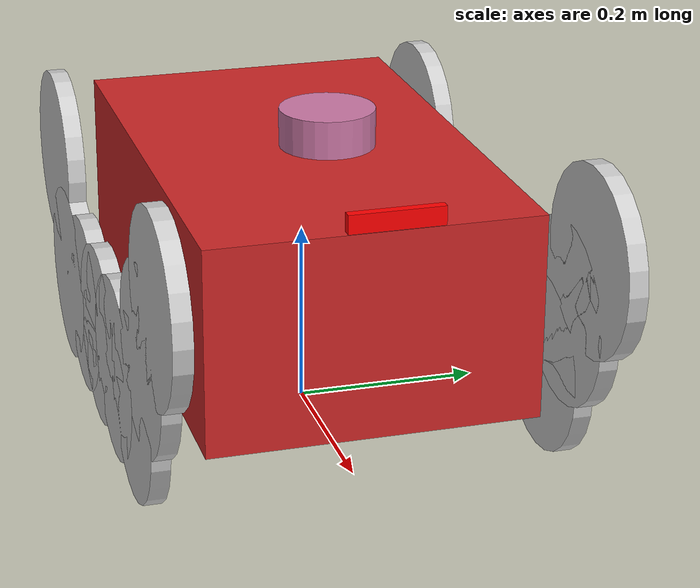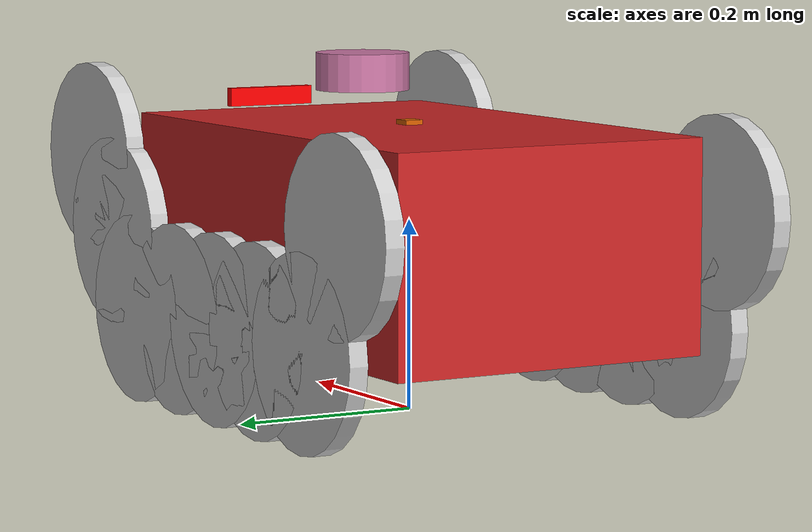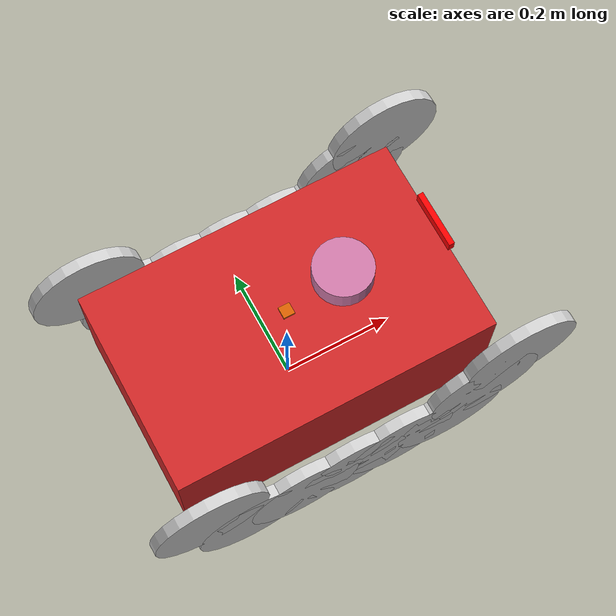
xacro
<?xml version="1.0" ?>
<robot name="bunker1" xmlns:xacro="http://ros.org/wiki/xacro">
    <xacro:arg name="namespace" default=""/>
    <xacro:include filename="inertial.xacro"/>
    <xacro:include filename="material.xacro"/>
    <xacro:include filename="macro-roue.xacro"/>
    <xacro:include filename="macro-imu.xacro"/>
    <xacro:include filename="macro-gps2.xacro"/>
    <xacro:include filename="macro-d435.xacro"/>

    <xacro:property name="base_width" value="0.350"/>
    <xacro:property name="base_length" value="0.560"/>
    <xacro:property name="base_height" value="0.22"/>
    <xacro:property name="sol_height" value="0.08"/>

    <xacro:property name="wheel_radius" value="0.10"/>
    <xacro:property name="wheel_width" value="0.02"/>
    <xacro:property name="wheel_ygap" value="${base_width*0.6+wheel_width/2.0}"/>
<!-- position des roues -->
    <xacro:property name="x1" value="${wheel_radius*0.9}"/>
    <xacro:property name="x2" value="${wheel_radius*1.85}"/>
    <xacro:property name="x3" value="0.254"/>
    <xacro:property name="x4" value="0.300"/>
    <xacro:property name="x5" value="0.242"/>

    <link name="$(arg namespace)/base_link">
        <origin xyz="0 0 0.5" rpy="0 0 0"/>
    </link>
    <link name="$(arg namespace)/base_footprint">
    </link>
    <joint name="$(arg namespace)/base_footprint_joint" type="fixed">
        <parent link="$(arg namespace)/base_link"/>
        <child link="$(arg namespace)/base_footprint" />
        <origin xyz="0 0 0" rpy="0 0 0"/>
    </joint>

    <joint name="$(arg namespace)/corps_joint" type="fixed">
        <parent link="$(arg namespace)/base_link"/>
        <child link="$(arg namespace)/corps_link" />
        <origin xyz="0 0 ${base_height/2+sol_height}" rpy="0 0 0"/>
    </joint>

    <link name="$(arg namespace)/corps_link">
        <visual>
            <origin xyz="0 0 0" rpy="0 0 0"/>
            <geometry>
                <box size="${base_length} ${base_width}  ${base_height}"/>
            </geometry>

        </visual>

        <collision>
            <geometry>
                <box size="${base_length} ${base_width}  ${base_height}"/>
            </geometry>
        </collision>

        <xacro:box_inertia m="50.0" d="${base_width}" w="${base_length}" h="${base_height}"/>
    </link>

<!-- LEFT TRACK  -->
    <link name='$(arg namespace)/left_track'>
        <origin xyz="0 0.2 0" rpy="0 0 0"/>
        <xacro:box_inertia m="1.0" w="${base_width}" d="${base_length}" h="${base_height}"/>
    </link>

    <joint name='$(arg namespace)/left_track_j' type='revolute'>
        <child link="$(arg namespace)/left_track"/>
        <parent link="$(arg namespace)/base_link"/>
        <axis xyz="0 1 0"/>
        <limit lower="0" upper="0" effort="0" velocity="4"/>
    </joint>
<!-- RIGHT TRACK  -->
    <link name='$(arg namespace)/right_track'>
        <origin xyz="0 -0.2 0" rpy="0 0 0"/>
            <xacro:box_inertia m="1.0" w="${base_width}" d="${base_length}" h="${base_height}"/>
    </link>
    <joint name='$(arg namespace)/right_track_j' type='revolute'>
        <child link="$(arg namespace)/right_track"/>
        <parent link="$(arg namespace)/base_link"/>
        <axis xyz="0 1 0"/>
        <limit lower="0" upper="0" effort="0" velocity="4"/>
        <use_parent_model_frame>1</use_parent_model_frame>
    </joint>

<!-- LEFT WHEELs -->
<xacro:roue suffix="left" num="0" xx="0" zz="0" sign=""/>
<xacro:roue suffix="left" num="1" xx="${x1}" zz="0" sign=""/>
<xacro:roue suffix="left" num="2" xx="${-x1}" zz="0" sign=""/>
<xacro:roue suffix="left" num="3" xx="${x2}" zz="0" sign=""/>
<xacro:roue suffix="left" num="4" xx="${-x2}" zz="0" sign=""/>
<xacro:roue suffix="left" num="5" xx="${-x3}" zz="0.120" sign=""/>
<xacro:roue suffix="left" num="6" xx="${x4}" zz="0.155" sign=""/>
<xacro:roue suffix="left" num="7" xx="${x5}" zz="0.078" sign=""/>

<!-- RIGHT WHEELs -->
<xacro:roue suffix="right" num="0" xx="0" zz="0" sign="-"/>
<xacro:roue suffix="right" num="1" xx="${x1}" zz="0" sign="-"/>
<xacro:roue suffix="right" num="2" xx="${-x1}" zz="0" sign="-"/>
<xacro:roue suffix="right" num="3" xx="${x2}" zz="0" sign="-"/>
<xacro:roue suffix="right" num="4" xx="${-x2}" zz="0" sign="-"/>
<xacro:roue suffix="right" num="5" xx="${-x3}" zz="0.120" sign="-"/>
<xacro:roue suffix="right" num="6" xx="${x4}" zz="0.155" sign="-"/>
<xacro:roue suffix="right" num="7" xx="${x5}" zz="0.078" sign="-"/>

<!-- IMU -->
<xacro:myimu xyz="0 0 ${sol_height+base_height}" rpy="0 0 0"/>

<!-- GPS -->
<xacro:mygps xyz="0.1 0 ${sol_height+base_height+0.05}" rpy="0 0 0"/>

<!-- GPS -->
<xacro:myd435 xyz="${base_length/2} 0.0175 ${base_height+sol_height+0.0125}" rpy="0 0 0"/>

<!-- pour republier les angles de roues -->
<gazebo>

    <plugin name="wheel_drive_controller" filename="libgazebo_ros_diff_drive.so">

    <!-- wheels -->
    <num_wheel_pairs>8</num_wheel_pairs>
                <left_joint>$(arg namespace)/left_wheel_joint_0</left_joint>
                <right_joint>$(arg namespace)/right_wheel_joint_0</right_joint>
                <left_joint>$(arg namespace)/left_wheel_joint_1</left_joint>
                <right_joint>$(arg namespace)/right_wheel_joint_1</right_joint>
                <left_joint>$(arg namespace)/left_wheel_joint_2</left_joint>
                <right_joint>$(arg namespace)/right_wheel_joint_2</right_joint>
                <left_joint>$(arg namespace)/left_wheel_joint_3</left_joint>
                <right_joint>$(arg namespace)/right_wheel_joint_3</right_joint>
                <left_joint>$(arg namespace)/left_wheel_joint_4</left_joint>
                <right_joint>$(arg namespace)/right_wheel_joint_4</right_joint>
                <left_joint>$(arg namespace)/left_wheel_joint_5</left_joint>
                <right_joint>$(arg namespace)/right_wheel_joint_5</right_joint>
                <left_joint>$(arg namespace)/left_wheel_joint_6</left_joint>
                <right_joint>$(arg namespace)/right_wheel_joint_6</right_joint>
                <left_joint>$(arg namespace)/left_wheel_joint_7</left_joint>
                <right_joint>$(arg namespace)/right_wheel_joint_7</right_joint>

    <!-- kinematics -->
    <wheel_separation>${wheel_ygap*2.0}</wheel_separation>
    <wheel_diameter>${wheel_radius*2.0}</wheel_diameter>
    <max_wheel_torque>20000.0</max_wheel_torque>
    <max_wheel_acceleration>100.0</max_wheel_acceleration>

    <!-- odometry  -->
    <odometry_frame>$(arg namespace)/odom</odometry_frame>
    <robot_base_frame>$(arg namespace)/base_link</robot_base_frame>

    <publish_odom>true</publish_odom>
    <publish_odom_tf>true</publish_odom_tf>
    <update_rate>100.0</update_rate>
    </plugin>

</gazebo>

<gazebo reference="$(arg namespace)/corps_link">

    <material>Gazebo/Red</material>
  </gazebo>

</robot>

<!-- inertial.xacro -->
<robot  xmlns:xacro="http://ros.org/wiki/xacro">

    <!-- Define intertial property macros  -->
    <xacro:macro name="box_inertia" params="m w h d">
        <inertial>
            <origin xyz="0 0 0" rpy="1.57 0 1.57"/>
            <mass value="${m}"/>
            <inertia ixx="${(m/12) * (h*h + d*d)}" ixy="0.0" ixz="0.0" iyy="${(m/12) * (w*w + d*d)}" iyz="0.0" izz="${(m/12) * (w*w + h*h)}"/>
        </inertial>
    </xacro:macro>

    <xacro:macro name="cylinder_inertia" params="m r h">
        <inertial>
            <origin xyz="0 0 0" rpy="1.57 0 0" />
            <mass value="${m}"/>
            <inertia ixx="${(m/12) * (3*r*r + h*h)}" ixy = "0" ixz = "0" iyy="${(m/12) * (3*r*r + h*h)}" iyz = "0" izz="${(m/2) * (r*r)}"/>
        </inertial>
    </xacro:macro>

    <xacro:macro name="sphere_inertia" params="m r">
        <inertial>
            <mass value="${m}"/>
            <inertia ixx="${(2/5) * m * (r*r)}" ixy="0.0" ixz="0.0" iyy="${(2/5) * m * (r*r)}" iyz="0.0" izz="${(2/5) * m * (r*r)}"/>
        </inertial>
    </xacro:macro>

    <xacro:macro name="mixyz" params="m ixx ixy ixz iyy iyz izz">
        <inertial>
            <mass value="${m}"/>
            <inertia ixx="${ixx}" ixy="${ixy}" ixz="${ixz}" iyy="${iyy}" iyz="${iyz}" izz="${izz}"/>
        </inertial>
    </xacro:macro>

</robot>

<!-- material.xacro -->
<robot  xmlns:xacro="http://ros.org/wiki/xacro">
    <material name="black">
        <color rgba="0 0 0 0"/>
    </material>
    <material name="blue">
        <color rgba="0 0 0.8 1"/>
    </material>
    <material name="red">
        <color rgba="1.0 0 0 1"/>
    </material>
    <material name="green">
        <color rgba="0 0.8 0 1"/>
    </material>
    <material name="white">
        <color rgba="0.8 0.8 0.8 1"/>
    </material>
</robot>

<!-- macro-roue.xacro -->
<robot  xmlns:xacro="http://ros.org/wiki/xacro">

<xacro:macro name="roue" params="suffix num xx zz sign">
   <link name="$(arg namespace)/${suffix}_wheel_link_${num}">
      <visual>
        <origin xyz="0 0 0" rpy="${pi/2} 0 0"/>
        <geometry>
            <cylinder radius="${wheel_radius}" length="${wheel_width}"/>
        </geometry>
        <material name="white"/>
      </visual>

      <collision>
        <origin xyz="0 0 0" rpy="${pi/2} 0 0"/>
        <geometry>
           <cylinder radius="${wheel_radius}" length="${wheel_width}"/>
        </geometry>
      </collision>

      <xacro:cylinder_inertia m="100" r="${wheel_radius}" h="${wheel_width}"/>
    </link>

    <joint name="$(arg namespace)/${suffix}_wheel_joint_${num}" type="continuous">
        <parent link="$(arg namespace)/${suffix}_track"/>
        <child link="$(arg namespace)/${suffix}_wheel_link_${num}"/>
        <origin xyz="${xx} ${sign}${wheel_ygap} ${wheel_radius+zz}" rpy="0 0 0"/>
        <limit effort="0" velocity="1.0"/>
        <axis xyz="0 1 0"/>
    </joint>

    <gazebo reference="$(arg namespace)/${suffix}_wheel_link_${num}">
      <mu1>10</mu1>
      <mu2>10</mu2>
    <material>Gazebo/Black</material>
  </gazebo>

</xacro:macro>

</robot>

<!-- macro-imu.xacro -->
<robot  xmlns:xacro="http://ros.org/wiki/xacro">

<xacro:macro name="myimu" params="xyz rpy">
<link name="$(arg namespace)/imu_link">
  <visual>
    <origin xyz="0 0 0 " rpy="0 0 0"/>
    <geometry>
        <box size="0.02 0.02 0.01"/>
    </geometry>
  </visual>
</link>

<joint name="$(arg namespace)/imu_joint" type="fixed">
    <parent link="$(arg namespace)/base_link"/>
    <child link="$(arg namespace)/imu_link"/>
    <origin xyz="${xyz}" rpy="${rpy}"/>
</joint>

<gazebo reference="$(arg namespace)/imu_link">
    <gravity>true</gravity>
    <sensor name="imu_sensor" type="imu">
      <always_on>true</always_on>
      <update_rate>100</update_rate>
      <visualize>true</visualize>
      <plugin filename="libgazebo_ros_imu_sensor.so" name="imu_plugin">
        <topicName>imu</topicName>
        <bodyName>imu_link</bodyName>
        <updateRateHZ>10.0</updateRateHZ>
        <gaussianNoise>0.0</gaussianNoise>
        <xyzOffset>0 0 0</xyzOffset>
        <rpyOffset>0 0 0</rpyOffset>
        <frameName>imu_link</frameName>
        <initialOrientationAsReference>false</initialOrientationAsReference>
        <remapping>imu_plugin/out:=imu_data</remapping>
      </plugin>
    </sensor>
  </gazebo>

</xacro:macro>
</robot>

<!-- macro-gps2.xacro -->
<robot  xmlns:xacro="http://ros.org/wiki/xacro">
<xacro:macro name="mygps" params="xyz rpy">

<link name="$(arg namespace)/gps_link">
  <visual>
    <origin xyz="0 0 0 " rpy="0 0 0"/>
    <geometry>
        <cylinder radius="0.05" length="0.04"/>
    </geometry>
  </visual>
</link>

<joint name="$(arg namespace)/gps_joint" type="fixed">
    <parent link="$(arg namespace)/base_link"/>
    <child link="$(arg namespace)/gps_link"/>
    <origin xyz="${xyz}" rpy="${rpy}"/>
</joint>

<gazebo reference="$(arg namespace)/gps_link">
  <sensor name="my_gps" type="gps">
    <always_on>true</always_on>
    <update_rate>10</update_rate>
    <gps>
      <position_sensing>
        <horizontal>
          <noise type="gaussian">
            <mean>0.0</mean>
            <stddev>2e-1</stddev>
          </noise>
        </horizontal>
        <vertical>
          <noise type="gaussian">
           <mean>0.0</mean>
           <stddev>2e-1</stddev>
          </noise>
        </vertical>
      </position_sensing>
    </gps>
    <plugin name="gps" filename="libgazebo_ros_gps_sensor.so">
      <ros>
      </ros>
    </plugin>
  </sensor>
</gazebo>

</xacro:macro>

</robot>

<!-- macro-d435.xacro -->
<robot xmlns:xacro="http://www.ros.org/wiki/xacro" >
<xacro:macro name="myd435" params="xyz rpy">

    <link name="$(arg namespace)/camera_link"></link>
    <joint name="$(arg namespace)/camera_joint" type="fixed">
        <parent link="$(arg namespace)/base_link"/>
        <child link="$(arg namespace)/camera_link"/>
        <origin xyz="${xyz}" rpy="${rpy}" />
    </joint>

    <link name="$(arg namespace)/camera_depth_frame"></link>
    <joint name="$(arg namespace)/camera_depth_joint" type="fixed">
        <parent link="$(arg namespace)/camera_link" />
        <child link="$(arg namespace)/camera_depth_frame" />
        <origin xyz="0 0 0" rpy="0 0 0" />
    </joint>

    <link name="$(arg namespace)/camera_depth_optical_frame">
        <visual name="$(arg namespace)/visual_camera">
            <geometry>
                <box size="0.1 0.02 0.01"/>
            </geometry>
            <material name="red"/>
        </visual>
    </link>
    <joint name="$(arg namespace)/camera_optical_joint" type="fixed">
        <parent link="$(arg namespace)/camera_depth_frame"/>
        <child link="$(arg namespace)/camera_depth_optical_frame"/>
        <origin xyz="0 0 0" rpy="${-pi/2} 0 ${-pi/2}"/>
    </joint>

    <link name="$(arg namespace)/camera_color_frame"></link>
    <joint name="$(arg namespace)/camera_color_joint" type="fixed">
        <parent link="$(arg namespace)/camera_depth_frame" />
        <child link="$(arg namespace)/camera_color_frame" />
        <origin xyz="0 0 0" rpy="0 0 0" />
    </joint>

    <link name="$(arg namespace)/camera_color_optical_frame"></link>
    <joint name="$(arg namespace)/camera_color_optical_joint" type="fixed">
        <parent link="$(arg namespace)/camera_color_frame" />
        <child link="$(arg namespace)/camera_color_optical_frame" />
        <origin xyz="0 0 0 " rpy="${-pi/2} 0 ${-pi/2}" />
    </joint>

    <link name="$(arg namespace)/camera_left_ir_frame"></link>
    <joint name="$(arg namespace)/camera_left_ir_joint" type="fixed">
        <parent link="$(arg namespace)/camera_depth_frame" />
        <child link="$(arg namespace)/camera_left_ir_frame" />
        <origin xyz="0 0 0 " rpy="0 0 0 " />
    </joint>

    <link name="$(arg namespace)/camera_left_ir_optical_frame"></link>
    <joint name="$(arg namespace)/camera_left_ir_optical_joint" type="fixed">
        <parent link="$(arg namespace)/camera_left_ir_frame" />
        <child link="$(arg namespace)/camera_left_ir_optical_frame" />
        <origin xyz="0 0 0 " rpy="${-pi/2} 0 ${-pi/2}" />
    </joint>

    <link name="$(arg namespace)/camera_right_ir_frame"></link>
    <joint name="$(arg namespace)/camera_right_ir_joint" type="fixed">
        <parent link="$(arg namespace)/camera_depth_frame" />
        <child link="$(arg namespace)/camera_right_ir_frame" />
        <origin xyz="0 -0.050 0 " rpy="0 0 0" />
    </joint>

    <link name="$(arg namespace)/camera_right_ir_optical_frame"></link>
    <joint name="$(arg namespace)/camera_right_ir_optical_joint" type="fixed">
        <parent link="$(arg namespace)/camera_right_ir_frame" />
        <child link="$(arg namespace)/camera_right_ir_optical_frame" />
        <origin xyz="0 0 0" rpy="${-pi/2} 0 ${-pi/2}" />
    </joint>

<!-- PLUGINS GAZEBO FOR CAMERAS : DEPTH, RGB, INFRA -->

    <gazebo reference="$(arg namespace)/camera_link">
        <material>Gazebo/Red</material>

        <sensor name="depth" type="depth">
            <pose> 0 0 0 0 0 0 </pose>
            <visualize>true</visualize>
            <update_rate>10</update_rate>
            <camera>
                <horizontal_fov>1.089</horizontal_fov>
                <image>
                    <width>640</width>
                    <height>480</height>
                </image>
                <clip>
                    <near>0.1</near>
                    <far>8</far>
                </clip>
                <noise>
                    <type>gaussian</type>
                    <mean>0.0</mean>
                    <stddev>0.100</stddev>
                </noise>
            </camera>
            <plugin name="camera_controller" filename="libgazebo_ros_camera.so">
                <alwaysOn>true</alwaysOn>
                <updateRate>10.0</updateRate>
                <frame_name>$(arg namespace)/camera_depth_optical_frame</frame_name>
                <cameraName>depth</cameraName>
                <imageTopicName>image_raw</imageTopicName>
                <cameraInfoTopicName>camera_info</cameraInfoTopicName>
            </plugin>
        </sensor>
    </gazebo>

    <gazebo reference="$(arg namespace)/camera_color_frame">

        <sensor name="color" type="camera">
            <pose> 0 0 0 0 0 0 </pose>
            <visualize>true</visualize>
            <update_rate>30</update_rate>
            <always_on>true</always_on>
            <camera>
                <horizontal_fov>1.57</horizontal_fov>
                <image>
                    <format>B8G8R8</format>
                    <width>1280</width>
                    <height>720</height>
                </image>
                <clip>
                    <near>0.1</near>
                    <far>8</far>
                </clip>
                <noise>
                    <type>gaussian</type>
                    <mean>0.0</mean>
                    <stddev>0.007</stddev>
                </noise>
            </camera>
            <plugin name="camera_color_controller" filename="libgazebo_ros_camera.so">
                <alwaysOn>true</alwaysOn>
                <updateRate>30.0</updateRate>
                <cameraName>color</cameraName>
                <imageTopicName>image_raw</imageTopicName>
                <cameraInfoTopicName>camera_info</cameraInfoTopicName>
                <frameName>$(arg namespace)/camera_color_frame</frameName>
            </plugin>
        </sensor>

  </gazebo>

  <gazebo reference="$(arg namespace)/camera_left_ir_frame">

    <sensor name="infra1" type="camera">
        <pose> 0 0 0 0 0 0 </pose>
        <visualize>false</visualize>
        <update_rate>1</update_rate>
        <always_on>true</always_on>
        <camera>
            <horizontal_fov>1.57</horizontal_fov>
            <image>
                <format>L_INT8</format>
                <width>1280</width>
                <height>720</height>
            </image>
            <clip>
                <near>0.1</near>
                <far>8</far>
            </clip>
            <noise>
                <type>gaussian</type>
                <mean>0.0</mean>
                <stddev>0.05</stddev>
            </noise>
        </camera>
        <plugin name="camera_infra1_controller" filename="libgazebo_ros_camera.so">
            <alwaysOn>true</alwaysOn>
            <updateRate>1.0</updateRate>
            <cameraName>infra1</cameraName>
            <imageTopicName>image_raw</imageTopicName>
            <cameraInfoTopicName>camera_info</cameraInfoTopicName>
            <frameName>$(arg namespace)/camera_right_ir_frame</frameName>
        </plugin>
    </sensor>

  </gazebo>

  <gazebo reference="$(arg namespace)/camera_right_ir_frame">

    <sensor name="infra2" type="camera">
        <pose> 0 0 0 0 0 0 </pose>
        <visualize>false</visualize>
        <update_rate>1</update_rate>
        <always_on>true</always_on>
        <camera>
            <horizontal_fov>1.57</horizontal_fov>
            <image>
                <format>L_INT8</format>
                <width>1280</width>
                <height>720</height>
            </image>
            <clip>
                <near>0.1</near>
                <far>8</far>
            </clip>
            <noise>
                <type>gaussian</type>
                <mean>0.0</mean>
                <stddev>0.05</stddev>
            </noise>
        </camera>
        <plugin name="camera_infra2_controller" filename="libgazebo_ros_camera.so">
            <alwaysOn>true</alwaysOn>
            <updateRate>1.0</updateRate>
            <cameraName>infra2</cameraName>
            <imageTopicName>image_raw</imageTopicName>
            <cameraInfoTopicName>camera_info</cameraInfoTopicName>
            <frameName>$(arg namespace)/camera_right_ir_frame</frameName>
        </plugin>
    </sensor>

  </gazebo>

</xacro:macro>
</robot>
